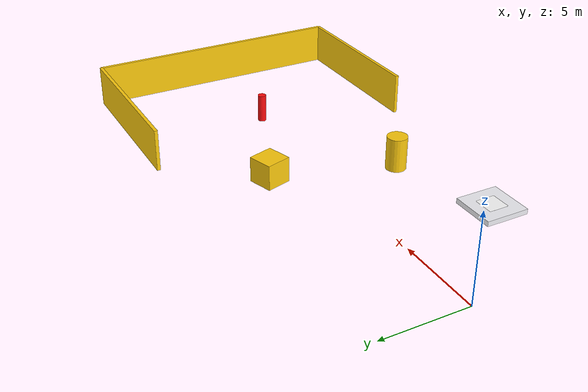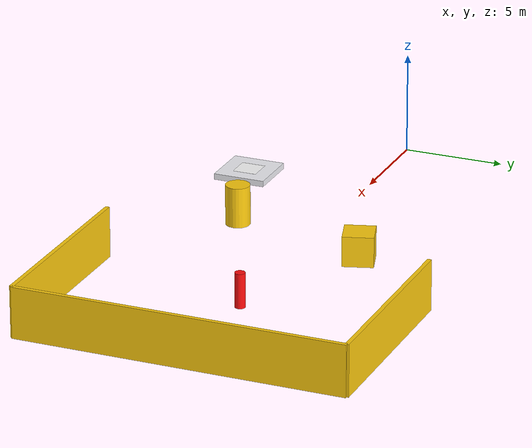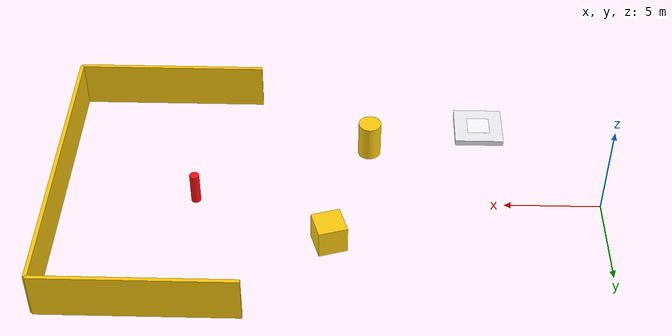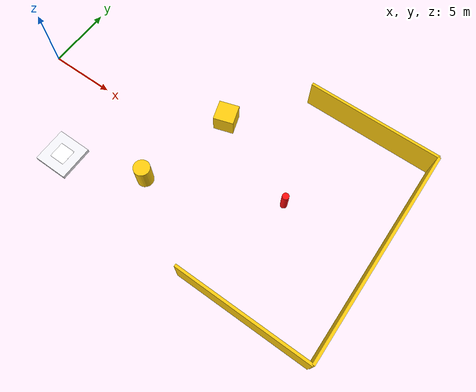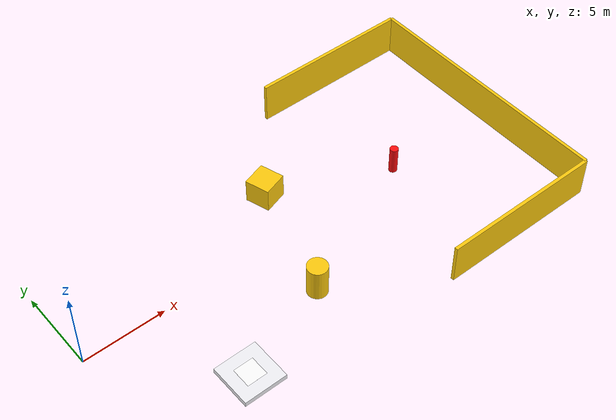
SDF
<sdf version="1.9">
 <world name="tracking_arena">
  <physics name="1ms" type="ignore">
   <max_step_size>0.001</max_step_size>
   <real_time_factor>1.0</real_time_factor>
  </physics>
  <plugin filename="gz-sim-physics-system" name="gz::sim::systems::Physics"/>
  <plugin filename="gz-sim-sensors-system" name="gz::sim::systems::Sensors">
   <render_engine>ogre2</render_engine>
  </plugin>
  <plugin filename="gz-sim-user-commands-system" name="gz::sim::systems::UserCommands"/>
  <plugin filename="gz-sim-scene-broadcaster-system" name="gz::sim::systems::SceneBroadcaster"/>
  <plugin filename="gz-sim-imu-system" name="gz::sim::systems::Imu"/>
  <plugin filename="gz-sim-navsat-system" name="gz::sim::systems::NavSat"/>
  <scene><ambient>1.0 1.0 1.0</ambient><background>0.8 0.8 0.8</background></scene>
  <spherical_coordinates>
   <latitude_deg>-35.363262</latitude_deg>
   <longitude_deg>149.165237</longitude_deg>
   <elevation>584</elevation>
   <heading_deg>0</heading_deg>
   <surface_model>EARTH_WGS84</surface_model>
  </spherical_coordinates>
  <light type="directional" name="sun">
   <pose>0 0 10 0 0 0</pose>
   <diffuse>0.8 0.8 0.8 1</diffuse>
   <specular>0.8 0.8 0.8 1</specular>
   <attenuation>
    <range>1000</range>
    <constant>0.9</constant>
    <linear>0.01</linear>
    <quadratic>0.001</quadratic>
   </attenuation>
   <direction>-0.5 0.1 -0.9</direction>
  </light>
  <include><uri>model://landing_dock</uri><pose>6 -6 0.15 0 0 0</pose></include>
  <model name="wall_back">
   <static>true</static>
   <pose>28 0 1.25 0 0 0</pose>
   <link name="link">
    <collision name="col"><geometry><box><size>0.2 16 2.5</size></box></geometry></collision>
    <visual name="vis">
     <geometry><box><size>0.2 16 2.5</size></box></geometry>
     <material>
      <ambient>1.0 0.75 0.0 1</ambient>
      <diffuse>1.0 0.8 0.05 1</diffuse>
      <specular>0.05 0.05 0.05 1</specular>
     </material>
    </visual>
   </link>
  </model>
  <model name="wall_north">
   <static>true</static>
   <pose>23 8 1.25 0 0 0</pose>
   <link name="link">
    <collision name="col"><geometry><box><size>10 0.2 2.5</size></box></geometry></collision>
    <visual name="vis">
     <geometry><box><size>10 0.2 2.5</size></box></geometry>
     <material>
      <ambient>1.0 0.75 0.0 1</ambient>
      <diffuse>1.0 0.8 0.05 1</diffuse>
      <specular>0.05 0.05 0.05 1</specular>
     </material>
    </visual>
   </link>
  </model>
  <model name="wall_south">
   <static>true</static>
   <pose>23 -8 1.25 0 0 0</pose>
   <link name="link">
    <collision name="col"><geometry><box><size>10 0.2 2.5</size></box></geometry></collision>
    <visual name="vis">
     <geometry><box><size>10 0.2 2.5</size></box></geometry>
     <material>
      <ambient>1.0 0.75 0.0 1</ambient>
      <diffuse>1.0 0.8 0.05 1</diffuse>
      <specular>0.05 0.05 0.05 1</specular>
     </material>
    </visual>
   </link>
  </model>
  <model name="obstacle_box">
   <static>true</static>
   <pose>14 3 0.75 0 0 0.3</pose>
   <link name="link">
    <collision name="col"><geometry><box><size>1.5 1.5 1.5</size></box></geometry></collision>
    <visual name="vis">
     <geometry><box><size>1.5 1.5 1.5</size></box></geometry>
     <material>
      <ambient>1.0 0.75 0.0 1</ambient>
      <diffuse>1.0 0.8 0.05 1</diffuse>
      <specular>0.05 0.05 0.05 1</specular>
     </material>
    </visual>
   </link>
  </model>
  <model name="obstacle_pillar">
   <static>true</static>
   <pose>12 -4 1.0 0 0 0</pose>
   <link name="link">
    <collision name="col">
     <geometry><cylinder><radius>0.6</radius><length>2.0</length></cylinder></geometry>
    </collision>
    <visual name="vis">
     <geometry><cylinder><radius>0.6</radius><length>2.0</length></cylinder></geometry>
     <material>
      <ambient>1.0 0.75 0.0 1</ambient>
      <diffuse>1.0 0.8 0.05 1</diffuse>
      <specular>0.05 0.05 0.05 1</specular>
     </material>
    </visual>
   </link>
  </model>
  <model name="person">
   <pose>21 0 0.86 0 0 0</pose>
   <link name="body">
    <gravity>false</gravity>
    <inertial><mass>70</mass><inertia><ixx>18</ixx><iyy>18</iyy><izz>2.2</izz></inertia></inertial>
    <visual name="vis">
     <geometry><cylinder><radius>0.25</radius><length>1.7</length></cylinder></geometry>
     <material>
      <ambient>0.9 0.05 0.05 1</ambient>
      <diffuse>1.0 0.05 0.05 1</diffuse>
      <specular>0.2 0.2 0.2 1</specular>
     </material>
    </visual>
   </link>
   <plugin filename="gz-sim-velocity-control-system" name="gz::sim::systems::VelocityControl">
    <initial_linear>0.8 0 0</initial_linear>
    <initial_angular>0 0 0.3</initial_angular>
   </plugin>
  </model>
 </world>
</sdf>

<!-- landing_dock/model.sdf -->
<sdf version="1.9">
  <model name="landing_dock">
    <static>true</static>
    <link name="base">
      <collision name="platform_col">
        <geometry>
          <box><size>2.6 2.6 0.3</size></box>
        </geometry>
      </collision>
      <visual name="platform">
        <geometry>
          <box><size>2.6 2.6 0.3</size></box>
        </geometry>
        <material>
          <ambient>0.9 0.9 0.92 1</ambient>
          <diffuse>0.95 0.95 0.97 1</diffuse>
          <specular>0.1 0.1 0.1 1</specular>
        </material>
      </visual>
      <!-- thin tag face lying on the platform top; the albedo map paints
           the AprilTag across each face, and only the top is ever seen -->
      <visual name="apriltag">
        <pose>0 0 0.1505 0 0 0</pose>
        <geometry>
          <box><size>1.2 1.2 0.001</size></box>
        </geometry>
        <material>
          <ambient>1 1 1 1</ambient>
          <diffuse>1 1 1 1</diffuse>
          <specular>0 0 0 1</specular>
          <pbr>
            <metal>
              <albedo_map>materials/textures/apriltag_36h11_id0.png</albedo_map>
              <metalness>0.0</metalness>
              <roughness>1.0</roughness>
            </metal>
          </pbr>
        </material>
      </visual>
    </link>
  </model>
</sdf>
